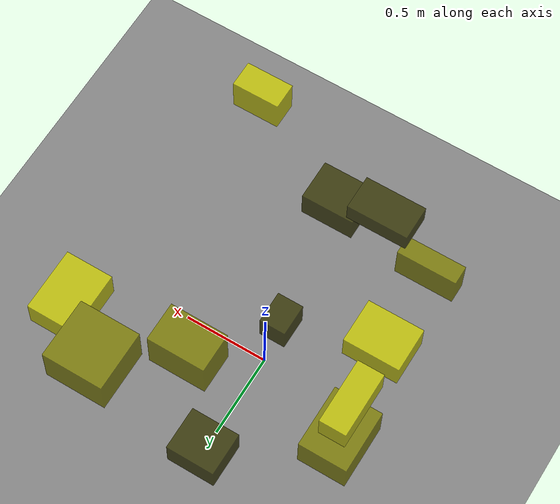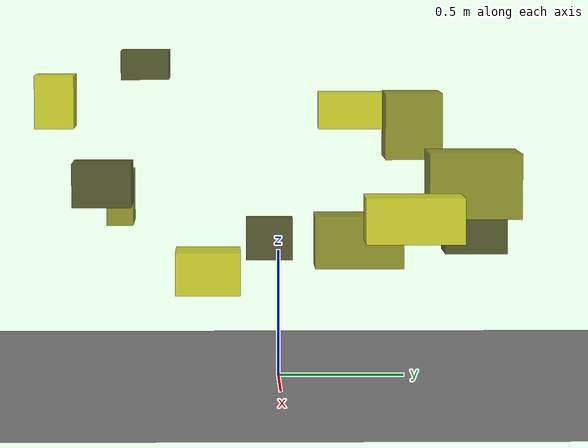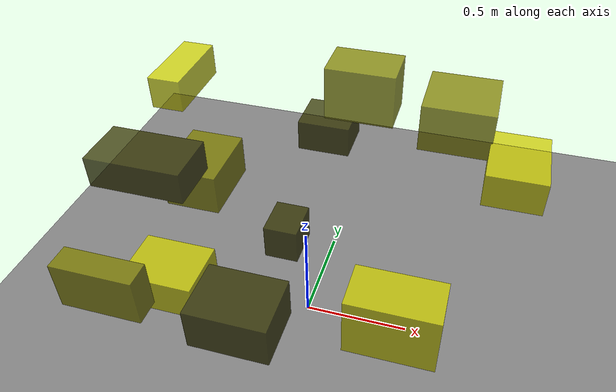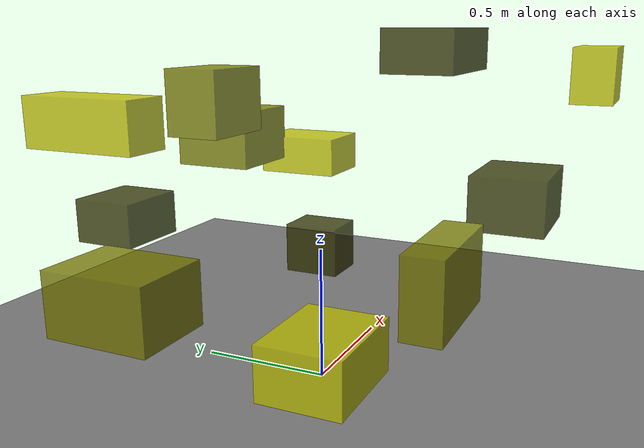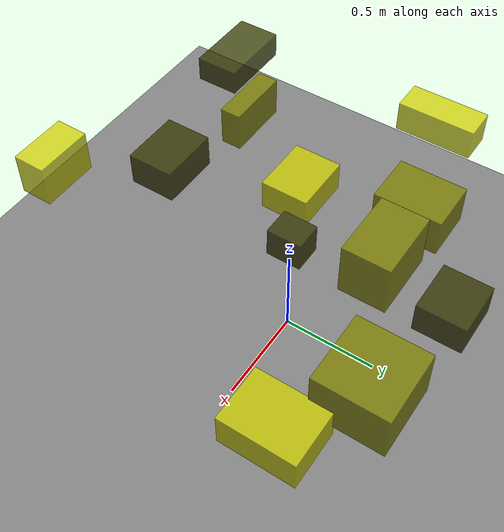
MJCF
<?xml version="1.0"?>
<mujoco model="obstacle_scene">
  <compiler angle="radian" coordinate="local"/>
  <option timestep="0.001" gravity="0 0 -9.81"/>

  <asset>
    <material name="obstacle_mat" rgba="0.8 0.8 0.0 0.8"/>
    <material name="ground_mat" rgba="0.5 0.5 0.5 1"/>
  </asset>

  <worldbody>
    <!-- Ground plane -->
    <geom name="ground" type="plane" size="3 3 0.1" material="ground_mat"/>

    <!-- Obstacles -->
    <body name="obstacle_0" pos="-0.111120 0.789118 0.571455">
      <geom name="obs_0" type="box" size="0.138377 0.123531 0.083930" rgba="0.2 0.2 0.0 0.8"/>
    </body>
    <body name="obstacle_1" pos="-0.614990 -0.645333 0.673909">
      <geom name="obs_1" type="box" size="0.173228 0.054851 0.108236" rgba="0.5 0.5 0.0 0.8"/>
    </body>
    <body name="obstacle_2" pos="-0.561070 -0.283350 0.366135">
      <geom name="obs_2" type="box" size="0.168889 0.134648 0.087308" rgba="0.8 0.8 0.0 0.8"/>
    </body>
    <body name="obstacle_3" pos="-0.019580 -0.700953 0.767477">
      <geom name="obs_3" type="box" size="0.152378 0.117703 0.086117" rgba="0.2 0.2 0.0 0.8"/>
    </body>
    <body name="obstacle_4" pos="-0.658184 0.345946 0.485666">
      <geom name="obs_4" type="box" size="0.140977 0.183930 0.108271" rgba="0.5 0.5 0.0 0.8"/>
    </body>
    <body name="obstacle_5" pos="0.547121 -0.859255 1.122080">
      <geom name="obs_5" type="box" size="0.133969 0.074395 0.099980" rgba="0.8 0.8 0.0 0.8"/>
    </body>
    <body name="obstacle_6" pos="-0.075049 -0.036111 0.544089">
      <geom name="obs_6" type="box" size="0.075544 0.092726 0.082391" rgba="0.2 0.2 0.0 0.8"/>
    </body>
    <body name="obstacle_7" pos="0.133157 0.523777 1.009735">
      <geom name="obs_7" type="box" size="0.163130 0.110431 0.129251" rgba="0.5 0.5 0.0 0.8"/>
    </body>
    <body name="obstacle_8" pos="-0.706308 0.364681 1.028449">
      <geom name="obs_8" type="box" size="0.075030 0.185675 0.075613" rgba="0.8 0.8 0.0 0.8"/>
    </body>
    <body name="obstacle_9" pos="-0.370471 -0.535297 1.231782">
      <geom name="obs_9" type="box" size="0.169508 0.096718 0.057460" rgba="0.2 0.2 0.0 0.8"/>
    </body>
    <body name="obstacle_10" pos="0.577610 0.733307 0.806009">
      <geom name="obs_10" type="box" size="0.176564 0.174264 0.123549" rgba="0.5 0.5 0.0 0.8"/>
    </body>
    <body name="obstacle_11" pos="0.883364 0.491674 0.695408">
      <geom name="obs_11" type="box" size="0.138519 0.183592 0.085432" rgba="0.8 0.8 0.0 0.8"/>
    </body>
  </worldbody>
</mujoco>
